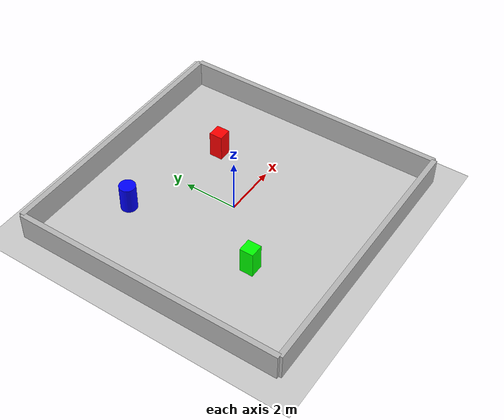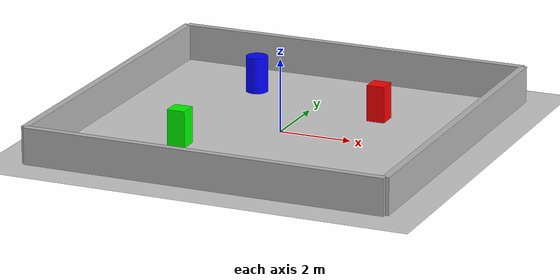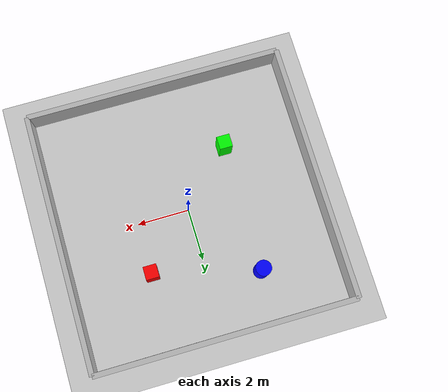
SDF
<?xml version="1.0" ?>
<sdf version="1.6">
  <world name="obstacles_world">

    <!-- This adds a flat ground plane for the robot to drive on -->
    <include>
      <uri>model://ground_plane</uri>
    </include>

    <!-- This adds sunlight so you can see things -->
    <include>
      <uri>model://sun</uri>
    </include>

    <!-- NORTH WALL: pose = x y z roll pitch yaw -->
    <!-- This wall sits at y=5 (top of the room), 10m wide -->
    <model name="wall_north">
      <static>true</static>
      <pose>0 5 0.5 0 0 0</pose>
      <link name="link">
        <collision name="collision">
          <geometry><box><size>10 0.2 1</size></box></geometry>
        </collision>
        <visual name="visual">
          <geometry><box><size>10 0.2 1</size></box></geometry>
        </visual>
      </link>
    </model>

    <!-- SOUTH WALL -->
    <model name="wall_south">
      <static>true</static>
      <pose>0 -5 0.5 0 0 0</pose>
      <link name="link">
        <collision name="collision">
          <geometry><box><size>10 0.2 1</size></box></geometry>
        </collision>
        <visual name="visual">
          <geometry><box><size>10 0.2 1</size></box></geometry>
        </visual>
      </link>
    </model>

    <!-- EAST WALL: rotated 90 degrees (1.5708 radians) to face east-west -->
    <model name="wall_east">
      <static>true</static>
      <pose>5 0 0.5 0 0 1.5708</pose>
      <link name="link">
        <collision name="collision">
          <geometry><box><size>10 0.2 1</size></box></geometry>
        </collision>
        <visual name="visual">
          <geometry><box><size>10 0.2 1</size></box></geometry>
        </visual>
      </link>
    </model>

    <!-- WEST WALL -->
    <model name="wall_west">
      <static>true</static>
      <pose>-5 0 0.5 0 0 1.5708</pose>
      <link name="link">
        <collision name="collision">
          <geometry><box><size>10 0.2 1</size></box></geometry>
        </collision>
        <visual name="visual">
          <geometry><box><size>10 0.2 1</size></box></geometry>
        </visual>
      </link>
    </model>

    <!-- RED BOX OBSTACLE at position (2, 2) -->
    <model name="box_obstacle_1">
      <static>true</static>
      <pose>2 2 0.5 0 0 0</pose>
      <link name="link">
        <collision name="collision">
          <geometry><box><size>0.5 0.5 1</size></box></geometry>
        </collision>
        <visual name="visual">
          <geometry><box><size>0.5 0.5 1</size></box></geometry>
          <material><ambient>1 0 0 1</ambient></material>
        </visual>
      </link>
    </model>

    <!-- GREEN BOX OBSTACLE at position (-2, -2) -->
    <model name="box_obstacle_2">
      <static>true</static>
      <pose>-2 -2 0.5 0 0 0</pose>
      <link name="link">
        <collision name="collision">
          <geometry><box><size>0.5 0.5 1</size></box></geometry>
        </collision>
        <visual name="visual">
          <geometry><box><size>0.5 0.5 1</size></box></geometry>
          <material><ambient>0 1 0 1</ambient></material>
        </visual>
      </link>
    </model>

    <!-- BLUE CYLINDER OBSTACLE at position (-2, 3) -->
    <model name="cylinder_obstacle">
      <static>true</static>
      <pose>-2 3 0.5 0 0 0</pose>
      <link name="link">
        <collision name="collision">
          <geometry><cylinder><radius>0.3</radius><length>1</length></cylinder></geometry>
        </collision>
        <visual name="visual">
          <geometry><cylinder><radius>0.3</radius><length>1</length></cylinder></geometry>
          <material><ambient>0 0 1 1</ambient></material>
        </visual>
      </link>
    </model>

  </world>
</sdf>
